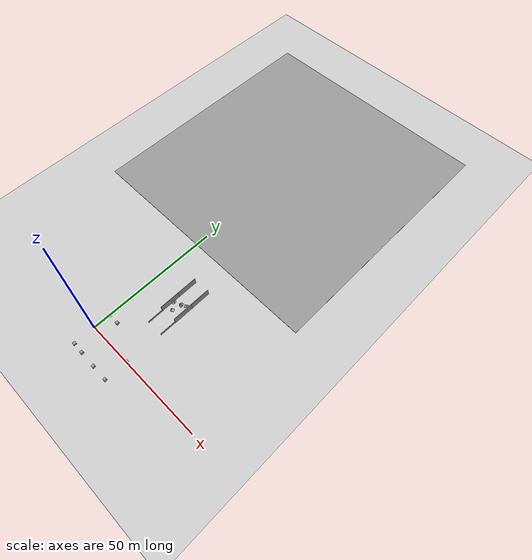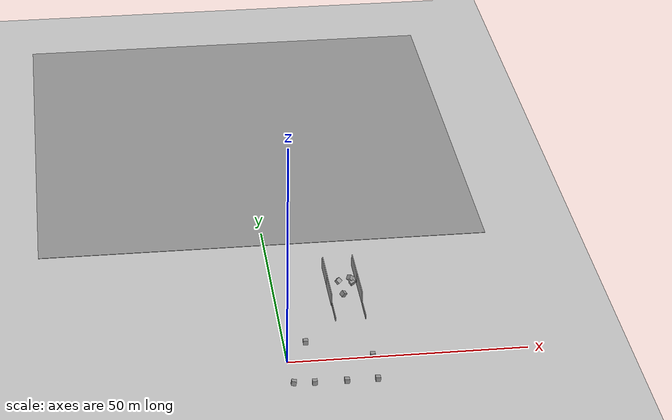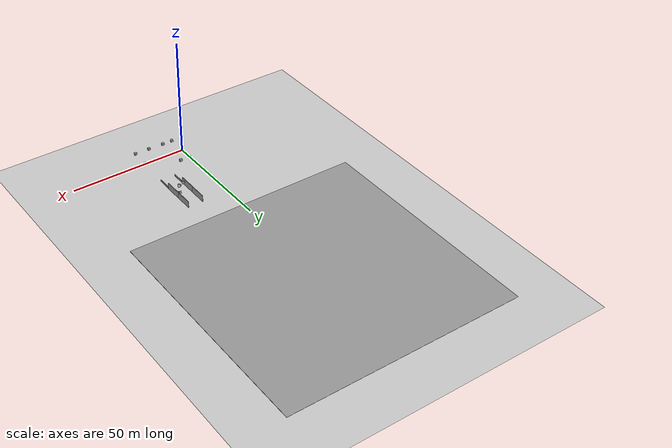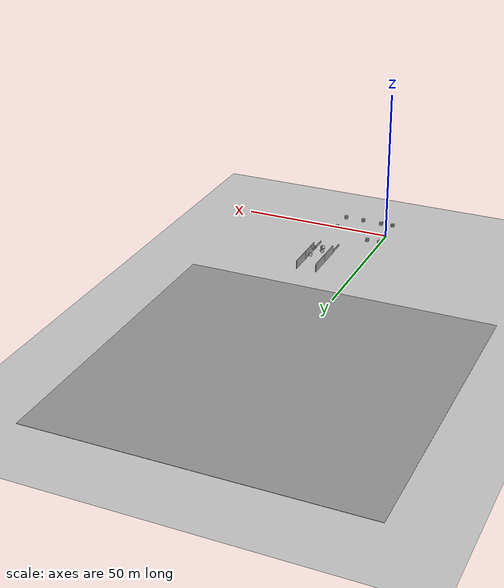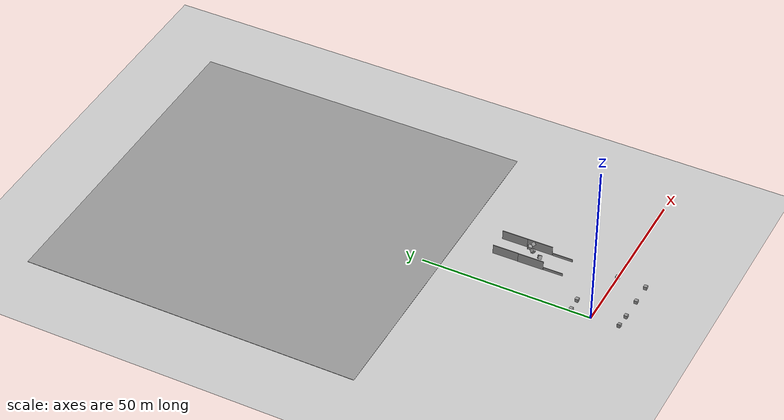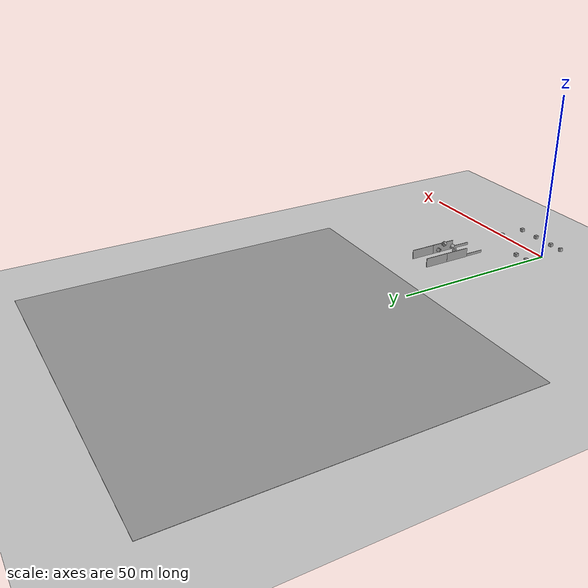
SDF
<sdf version="1.6">
 <world name="default">
  <light name="sun" type="directional">
   <pose>0 0 10 0 -0 0</pose>
   <diffuse>0.8 0.8 0.8 1</diffuse>
   <specular>0.2 0.2 0.2 1</specular>
   <attenuation>
    <range>1000</range>
    <constant>0.9</constant>
    <linear>0.01</linear>
    <quadratic>0.001</quadratic>
   </attenuation>
   <direction>-0.5 0.1 -0.9</direction>
  </light>
  <model name="ground_plane">
   <static>1</static>
   <link name="link">
    <collision name="collision">
     <geometry><plane><normal>0 0 1</normal><size>100 100</size></plane></geometry>
     <surface>
      <contact><collide_bitmask>65535</collide_bitmask></contact>
      <friction><ode><mu>100</mu><mu2>50</mu2></ode></friction>
     </surface>
    </collision>
    <visual name="visual">
     <cast_shadows>0</cast_shadows>
     <geometry><plane><normal>0 0 1</normal><size>100 100</size></plane></geometry>
     <material>
      <script><uri>file://media/materials/scripts/gazebo.material</uri><name>Gazebo/Grey</name></script>
     </material>
    </visual>
   </link>
  </model>
  <gravity>0 0 -9.8</gravity>
  <magnetic_field>6e-06 2.3e-05 -4.2e-05</magnetic_field>
  <atmosphere type="adiabatic"/>
  <physics name="default_physics" default="0" type="ode">
   <max_step_size>0.001</max_step_size>
   <real_time_factor>1</real_time_factor>
   <real_time_update_rate>1000</real_time_update_rate>
  </physics>
  <scene><ambient>0.4 0.4 0.4 1</ambient><background>0.7 0.7 0.7 1</background><shadows>1</shadows></scene>
  <audio><device>default</device></audio>
  <spherical_coordinates>
   <surface_model>EARTH_WGS84</surface_model>
   <latitude_deg>0</latitude_deg>
   <longitude_deg>0</longitude_deg>
   <elevation>0</elevation>
   <heading_deg>0</heading_deg>
  </spherical_coordinates>
  <model name="ground_plane_0">
   <static>1</static>
   <link name="link">
    <collision name="collision">
     <geometry><plane><normal>0 0 1</normal><size>100 100</size></plane></geometry>
     <surface><friction><ode><mu>100</mu><mu2>50</mu2></ode></friction></surface>
    </collision>
    <visual name="visual">
     <cast_shadows>0</cast_shadows>
     <geometry><plane><normal>0 0 1</normal><size>100 100</size></plane></geometry>
     <material>
      <script><uri>file://media/materials/scripts/gazebo.material</uri><name>Gazebo/Grey</name></script>
     </material>
    </visual>
   </link>
   <pose>0.033354 95.0033 0 0 -0 0</pose>
  </model>
  <model name="grey_wall_clone_clone_clone_clone_clone_0_clone">
   <static>1</static>
   <link name="link">
    <pose>0 0 1.4 0 -0 0</pose>
    <collision name="collision"><geometry><box><size>7.5 0.2 2.8</size></box></geometry></collision>
    <visual name="visual">
     <cast_shadows>0</cast_shadows>
     <geometry><box><size>7.5 0.2 2.8</size></box></geometry>
     <material>
      <script>
       <uri>model://grey_wall/materials/scripts</uri>
       <uri>model://grey_wall/materials/textures</uri>
       <name>vrc/grey_wall</name>
      </script>
     </material>
    </visual>
   </link>
   <pose>11.7534 23.1982 0 0 -0 1.57375</pose>
  </model>
  <model name="grey_wall_clone_clone_clone_clone_clone_0_clone_clone">
   <static>1</static>
   <link name="link">
    <pose>0 0 1.4 0 -0 0</pose>
    <collision name="collision"><geometry><box><size>7.5 0.2 2.8</size></box></geometry></collision>
    <visual name="visual">
     <cast_shadows>0</cast_shadows>
     <geometry><box><size>7.5 0.2 2.8</size></box></geometry>
     <material>
      <script>
       <uri>model://grey_wall/materials/scripts</uri>
       <uri>model://grey_wall/materials/textures</uri>
       <name>vrc/grey_wall</name>
      </script>
     </material>
    </visual>
   </link>
   <pose>18.3259 23.4162 0 0 -0 1.57375</pose>
  </model>
  <model name="grey_wall_clone_clone_clone_clone_clone_0_clone_clone_clone">
   <static>1</static>
   <link name="link">
    <pose>0 0 1.4 0 -0 0</pose>
    <collision name="collision"><geometry><box><size>7.5 0.2 2.8</size></box></geometry></collision>
    <visual name="visual">
     <cast_shadows>0</cast_shadows>
     <geometry><box><size>7.5 0.2 2.8</size></box></geometry>
     <material>
      <script>
       <uri>model://grey_wall/materials/scripts</uri>
       <uri>model://grey_wall/materials/textures</uri>
       <name>vrc/grey_wall</name>
      </script>
     </material>
    </visual>
   </link>
   <pose>18.2867 30.893 0 0 -0 1.57375</pose>
  </model>
  <model name="grey_wall_clone_clone_clone_clone_clone_0_clone_clone_clone_0">
   <static>1</static>
   <link name="link">
    <pose>0 0 1.4 0 -0 0</pose>
    <collision name="collision"><geometry><box><size>7.5 0.2 2.8</size></box></geometry></collision>
    <visual name="visual">
     <cast_shadows>0</cast_shadows>
     <geometry><box><size>7.5 0.2 2.8</size></box></geometry>
     <material>
      <script>
       <uri>model://grey_wall/materials/scripts</uri>
       <uri>model://grey_wall/materials/textures</uri>
       <name>vrc/grey_wall</name>
      </script>
     </material>
    </visual>
   </link>
   <pose>11.7525 30.698 0 0 -0 1.57375</pose>
  </model>
  <model name="unit_box_clone">
   <pose>13.732 23.5455 3.53302 -2.30979 -0.345058 0.754621</pose>
   <link name="unit_box_clone::link">
    <inertial>
     <mass>1</mass>
     <inertia>
      <ixx>0.166667</ixx>
      <ixy>0</ixy>
      <ixz>0</ixz>
      <iyy>0.166667</iyy>
      <iyz>0</iyz>
      <izz>0.166667</izz>
     </inertia>
    </inertial>
    <collision name="collision"><geometry><box><size>1 1 1</size></box></geometry></collision>
    <visual name="visual">
     <geometry><box><size>1 1 1</size></box></geometry>
     <material>
      <script><name>Gazebo/Grey</name><uri>file://media/materials/scripts/gazebo.material</uri></script>
     </material>
    </visual>
   </link>
  </model>
  <model name="unit_box_clone_0">
   <pose>17.0241 25.9105 1.43893 0.866785 1.06094 1.32765</pose>
   <link name="unit_box_clone_0::link">
    <inertial>
     <mass>1</mass>
     <inertia>
      <ixx>0.166667</ixx>
      <ixy>0</ixy>
      <ixz>0</ixz>
      <iyy>0.166667</iyy>
      <iyz>0</iyz>
      <izz>0.166667</izz>
     </inertia>
    </inertial>
    <collision name="collision"><geometry><box><size>1 1 1</size></box></geometry></collision>
    <visual name="visual">
     <geometry><box><size>1 1 1</size></box></geometry>
     <material>
      <script><name>Gazebo/Grey</name><uri>file://media/materials/scripts/gazebo.material</uri></script>
     </material>
    </visual>
   </link>
  </model>
  <model name="unit_box_clone_2">
   <pose>14.6077 21.7703 1.32501 -1.0132 -0.302384 2.04859</pose>
   <link name="unit_box_clone_2::link">
    <inertial>
     <mass>1</mass>
     <inertia>
      <ixx>0.166667</ixx>
      <ixy>0</ixy>
      <ixz>0</ixz>
      <iyy>0.166667</iyy>
      <iyz>0</iyz>
      <izz>0.166667</izz>
     </inertia>
    </inertial>
    <collision name="collision"><geometry><box><size>1 1 1</size></box></geometry></collision>
    <visual name="visual">
     <geometry><box><size>1 1 1</size></box></geometry>
     <material>
      <script><name>Gazebo/Grey</name><uri>file://media/materials/scripts/gazebo.material</uri></script>
     </material>
    </visual>
   </link>
  </model>
  <model name="unit_box_clone_3">
   <pose>16.3559 24.5584 3.49049 2.32349 -0.350201 -0.776897</pose>
   <link name="unit_box_clone_3::link">
    <inertial>
     <mass>1</mass>
     <inertia>
      <ixx>0.166667</ixx>
      <ixy>0</ixy>
      <ixz>0</ixz>
      <iyy>0.166667</iyy>
      <iyz>0</iyz>
      <izz>0.166667</izz>
     </inertia>
    </inertial>
    <collision name="collision"><geometry><box><size>1 1 1</size></box></geometry></collision>
    <visual name="visual">
     <geometry><box><size>1 1 1</size></box></geometry>
     <material>
      <script><name>Gazebo/Grey</name><uri>file://media/materials/scripts/gazebo.material</uri></script>
     </material>
    </visual>
   </link>
  </model>
  <model name="Untitled">
   <pose>15.0604 16.5465 0 0 -0 0</pose>
   <link name="Wall_0">
    <collision name="Wall_0_Collision">
     <geometry><box><size>5.817 0.15 0.8</size></box></geometry>
     <pose>0 0 0.4 0 -0 0</pose>
    </collision>
    <visual name="Wall_0_Visual">
     <pose>0 0 0.4 0 -0 0</pose>
     <geometry><box><size>5.817 0.15 0.8</size></box></geometry>
     <material>
      <script><uri>file://media/materials/scripts/gazebo.material</uri><name>Gazebo/Grey</name></script>
      <ambient>1 1 1 1</ambient>
     </material>
     <meta><layer>0</layer></meta>
    </visual>
    <pose>-3.215 0 0 0 -0 1.5708</pose>
   </link>
   <link name="Wall_2">
    <collision name="Wall_2_Collision">
     <geometry><box><size>5.817 0.15 0.8</size></box></geometry>
     <pose>0 0 0.4 0 -0 0</pose>
    </collision>
    <visual name="Wall_2_Visual">
     <pose>0 0 0.4 0 -0 0</pose>
     <geometry><box><size>5.817 0.15 0.8</size></box></geometry>
     <material>
      <script><uri>file://media/materials/scripts/gazebo.material</uri><name>Gazebo/Grey</name></script>
      <ambient>1 1 1 1</ambient>
     </material>
     <meta><layer>0</layer></meta>
    </visual>
    <pose>3.215 0 0 0 -0 1.5708</pose>
   </link>
   <static>1</static>
  </model>
  <model name="unit_box_3">
   <pose>17.6259 0.078143 0.500469 0.000419 -0.000422 -0.004724</pose>
   <link name="unit_box_3::link">
    <inertial>
     <mass>1</mass>
     <inertia>
      <ixx>0.166667</ixx>
      <ixy>0</ixy>
      <ixz>0</ixz>
      <iyy>0.166667</iyy>
      <iyz>0</iyz>
      <izz>0.166667</izz>
     </inertia>
    </inertial>
    <collision name="collision"><geometry><box><size>1 1 1</size></box></geometry></collision>
    <visual name="visual">
     <geometry><box><size>1 1 1</size></box></geometry>
     <material>
      <script><name>Gazebo/Grey</name><uri>file://media/materials/scripts/gazebo.material</uri></script>
     </material>
    </visual>
   </link>
  </model>
  <model name="unit_box_3_clone">
   <pose>4.51835 6.13538 0.50092 0.001099 -0.000737 -0.0086</pose>
   <link name="unit_box_3_clone::unit_box_3::link">
    <inertial>
     <mass>1</mass>
     <inertia>
      <ixx>0.166667</ixx>
      <ixy>0</ixy>
      <ixz>0</ixz>
      <iyy>0.166667</iyy>
      <iyz>0</iyz>
      <izz>0.166667</izz>
     </inertia>
    </inertial>
    <collision name="collision"><geometry><box><size>1 1 1</size></box></geometry></collision>
    <visual name="visual">
     <geometry><box><size>1 1 1</size></box></geometry>
     <material>
      <script><name>Gazebo/Grey</name><uri>file://media/materials/scripts/gazebo.material</uri></script>
     </material>
    </visual>
   </link>
  </model>
  <model name="unit_box">
   <pose>17.4453 -8.20585 0.500909 -0.001089 0.000726 -0.010141</pose>
   <link name="unit_box::link">
    <inertial>
     <mass>1</mass>
     <inertia>
      <ixx>0.166667</ixx>
      <ixy>0</ixy>
      <ixz>0</ixz>
      <iyy>0.166667</iyy>
      <iyz>0</iyz>
      <izz>0.166667</izz>
     </inertia>
    </inertial>
    <collision name="collision"><geometry><box><size>1 1 1</size></box></geometry></collision>
    <visual name="visual">
     <geometry><box><size>1 1 1</size></box></geometry>
     <material>
      <script><name>Gazebo/Grey</name><uri>file://media/materials/scripts/gazebo.material</uri></script>
     </material>
    </visual>
   </link>
  </model>
  <model name="unit_box_3_clone_clone">
   <pose>0.387355 -7.94332 0.632774 -0.023907 0.175431 -0.053679</pose>
   <link name="unit_box_3_clone_clone::unit_box_3_clone::unit_box_3::link">
    <inertial>
     <mass>1</mass>
     <inertia>
      <ixx>0.166667</ixx>
      <ixy>0</ixy>
      <ixz>0</ixz>
      <iyy>0.166667</iyy>
      <iyz>0</iyz>
      <izz>0.166667</izz>
     </inertia>
    </inertial>
    <collision name="collision"><geometry><box><size>1 1 1</size></box></geometry></collision>
    <visual name="visual">
     <geometry><box><size>1 1 1</size></box></geometry>
     <material>
      <script><name>Gazebo/Grey</name><uri>file://media/materials/scripts/gazebo.material</uri></script>
     </material>
    </visual>
   </link>
  </model>
  <model name="unit_box_3_clone_clone_clone">
   <pose>0.374741 6.00103 0.500419 -0.000394 0.000394 -0.008599</pose>
   <link name="unit_box_3_clone_clone_clone::unit_box_3_clone::unit_box_3::link">
    <inertial>
     <mass>1</mass>
     <inertia>
      <ixx>0.166667</ixx>
      <ixy>0</ixy>
      <ixz>0</ixz>
      <iyy>0.166667</iyy>
      <iyz>0</iyz>
      <izz>0.166667</izz>
     </inertia>
    </inertial>
    <collision name="collision"><geometry><box><size>1 1 1</size></box></geometry></collision>
    <visual name="visual">
     <geometry><box><size>1 1 1</size></box></geometry>
     <material>
      <script><name>Gazebo/Grey</name><uri>file://media/materials/scripts/gazebo.material</uri></script>
     </material>
    </visual>
   </link>
  </model>
  <model name="unit_box_3_clone_clone_clone_0">
   <pose>4.61876 -8.07947 0.500052 4.6e-05 5e-05 -0.009406</pose>
   <link name="unit_box_3_clone_clone_clone_0::unit_box_3_clone_clone::unit_box_3_clone::unit_box_3::link">
    <inertial>
     <mass>1</mass>
     <inertia>
      <ixx>0.166667</ixx>
      <ixy>0</ixy>
      <ixz>0</ixz>
      <iyy>0.166667</iyy>
      <iyz>0</iyz>
      <izz>0.166667</izz>
     </inertia>
    </inertial>
    <collision name="collision"><geometry><box><size>1 1 1</size></box></geometry></collision>
    <visual name="visual">
     <geometry><box><size>1 1 1</size></box></geometry>
     <material>
      <script><name>Gazebo/Grey</name><uri>file://media/materials/scripts/gazebo.material</uri></script>
     </material>
    </visual>
   </link>
  </model>
  <model name="unit_box_3_clone_clone_clone_0_clone">
   <pose>11.155 -8.18948 0.499995 6e-06 -3e-06 -0.011118</pose>
   <link name="unit_box_3_clone_clone_clone_0::unit_box_3_clone_clone::unit_box_3_clone::unit_box_3::link">
    <inertial>
     <mass>1</mass>
     <inertia>
      <ixx>0.166667</ixx>
      <ixy>0</ixy>
      <ixz>0</ixz>
      <iyy>0.166667</iyy>
      <iyz>0</iyz>
      <izz>0.166667</izz>
     </inertia>
    </inertial>
    <collision name="collision"><geometry><box><size>1 1 1</size></box></geometry></collision>
    <visual name="visual">
     <geometry><box><size>1 1 1</size></box></geometry>
     <material>
      <script><name>Gazebo/Grey</name><uri>file://media/materials/scripts/gazebo.material</uri></script>
     </material>
    </visual>
   </link>
  </model>
 </world>
</sdf>
